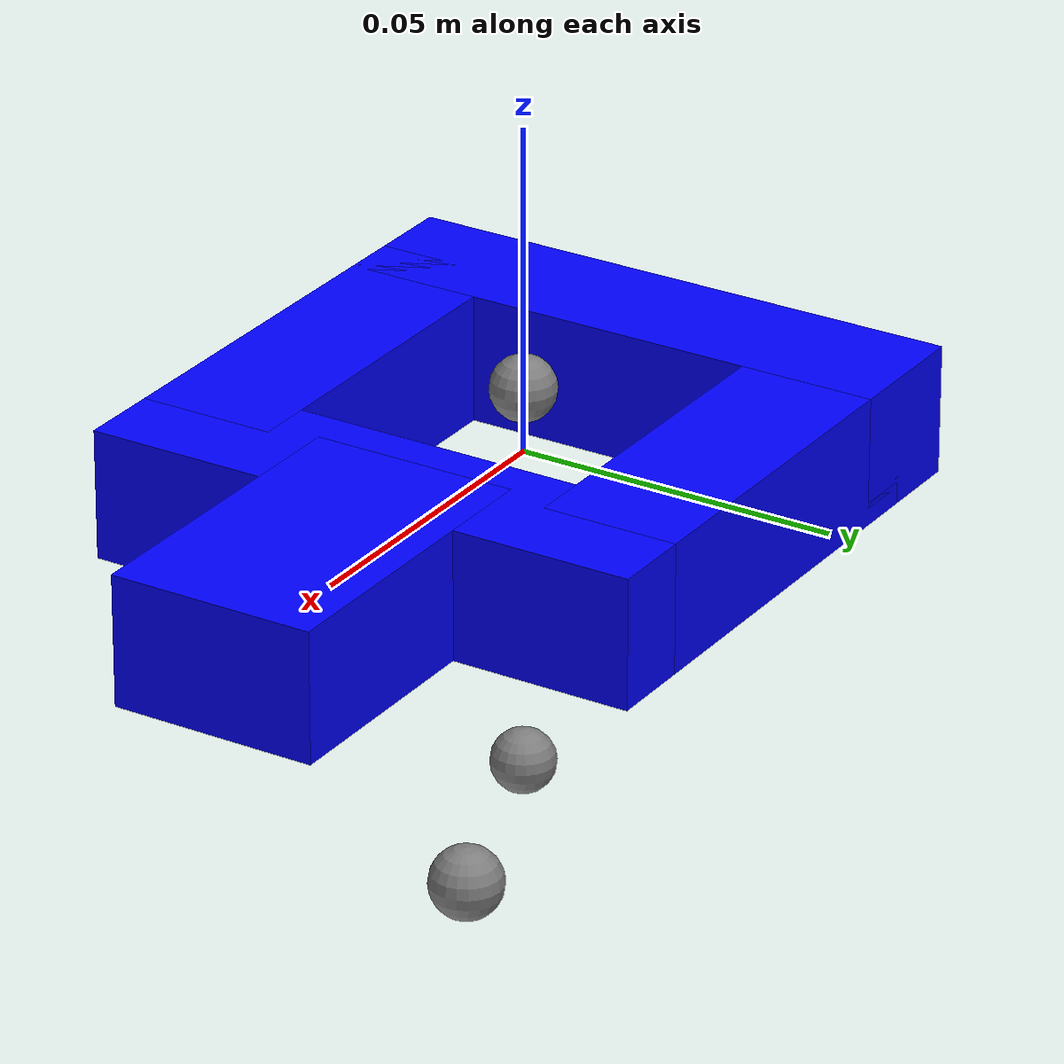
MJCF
<!-- sample of a general object defined in mujoco -->
<mujoco model="square-nut">
  <asset>
    <texture file="../textures/metal.png" type="2d" name="tex-metal"/>
    <material name="metal" reflectance="0.7" texrepeat="10 10" texture="tex-metal" texuniform="true"/>
  </asset>
  <worldbody>
    <body>
      <body name="collision">
        <geom pos="-0.03325 0 0" size="0.0105 0.04375 0.01" type="box" solimp="0.998 0.998 0.001" solref="0.02 1" density="100" friction="0.95 0.3 0.2" rgba="0 0 1 1" group="1" condim="4"/>
        <geom pos="0.0 0.03325 0" size="0.03125 0.0105 0.01" type="box" solimp="0.998 0.998 0.001" solref="0.02 1" density="100" friction="0.95 0.3 0.1" rgba="0 0 1 1" group="1" condim="4"/>
        <geom pos="0.0 -0.03325 0" size="0.03125 0.0105 0.01" type="box" solimp="0.998 0.998 0.001" solref="0.02 1" density="100" friction="0.95 0.3 0.1" rgba="0 0 1 1" group="1" condim="4"/>
        <geom pos="0.03325 0 0" size="0.0105 0.04375 0.01" type="box" solimp="0.998 0.998 0.001" solref="0.02 1" density="100" friction="0.95 0.3 0.1" rgba="0 0 1 1" group="1" condim="4"/>
        <geom pos="0.054 0 0" size="0.02525 0.015875 0.01" type="box" solimp="0.998 0.998 0.001" solref="0.02 1" density="100" friction="0.95 0.3 0.1" rgba="0 0 1 1" group="1" condim="4"/>

      </body>
      <body name="visual">
        <geom pos="-0.03325 0 0" size="0.0105 0.04375 0.01" type="box" rgba="0 0 1 1"  conaffinity="0" contype="0" group="0"/>
        <geom pos="0.0 0.03325 0" size="0.03125 0.0105 0.01" type="box" rgba="0 0 1 1"  conaffinity="0" contype="0" group="0"/>
        <geom pos="0.0 -0.03325 0" size="0.03125 0.0105 0.01" type="box" rgba="0 0 1 1"  conaffinity="0" contype="0" group="0"/>
        <geom pos="0.03325 0 0" size="0.0105 0.04375 0.01" type="box" rgba="0 0 1 1"  conaffinity="0" contype="0" group="0"/>

        <geom pos="-0.03325 0 0" size="0.0105 0.04375 0.01" type="box" rgba="0 0 1 1"  conaffinity="0" contype="0" group="1"/>
        <geom pos="0.0 0.03325 0" size="0.03125 0.0105 0.01" type="box" rgba="0 0 1 1"  conaffinity="0" contype="0" group="1"/>
        <geom pos="0.0 -0.03325 0" size="0.03125 0.0105 0.01" type="box" rgba="0 0 1 1"  conaffinity="0" contype="0" group="1"/>
        <geom pos="0.03325 0 0" size="0.0105 0.04375 0.01" type="box" rgba="0 0 1 1"  conaffinity="0" contype="0" group="1"/>
      </body>
      <site pos="0 0 -0.05" name="bottom_site"/>
      <site pos="0 0 0.01" name="top_site"/>
      <site pos="0.11 0.06 0" name="horizontal_radius_site"/>
    </body>

  </worldbody>
</mujoco>
